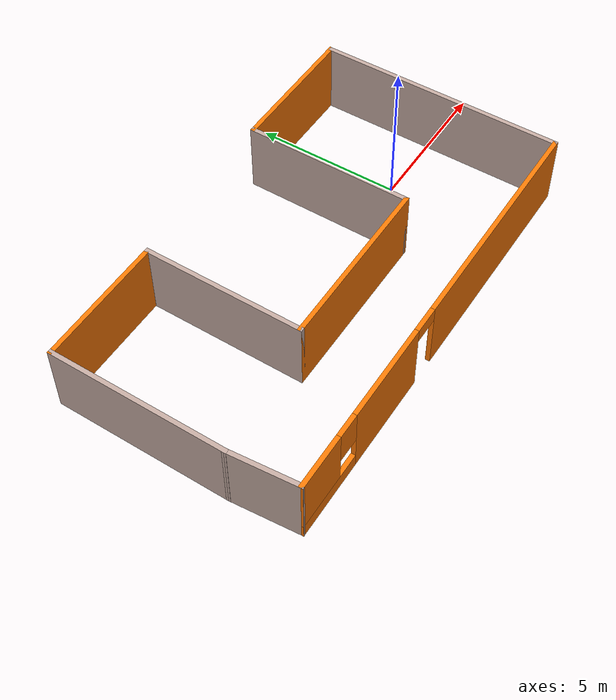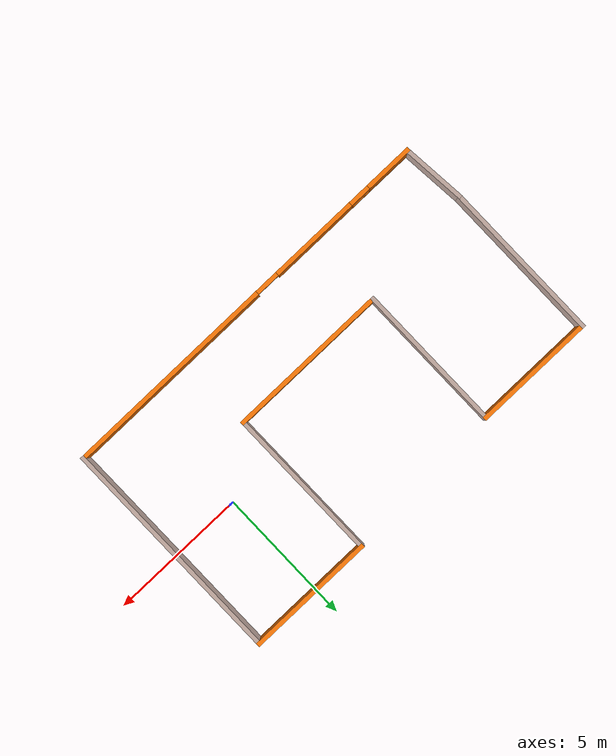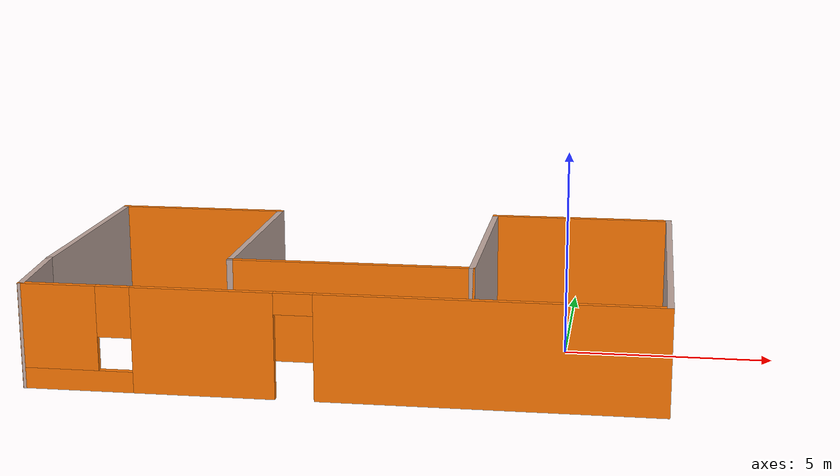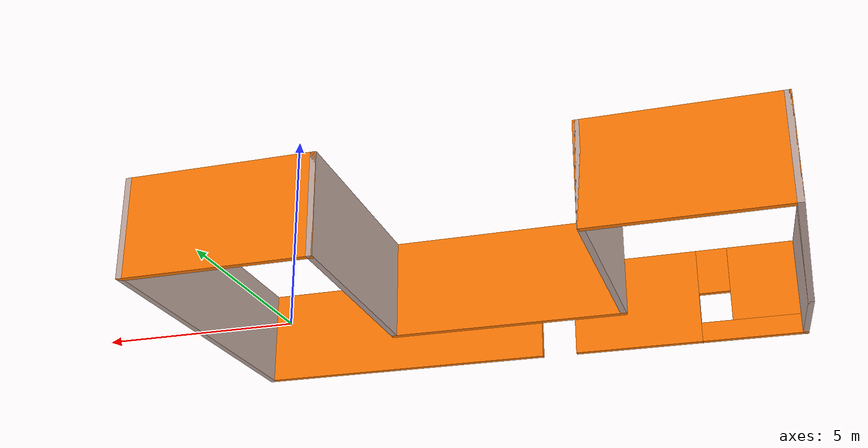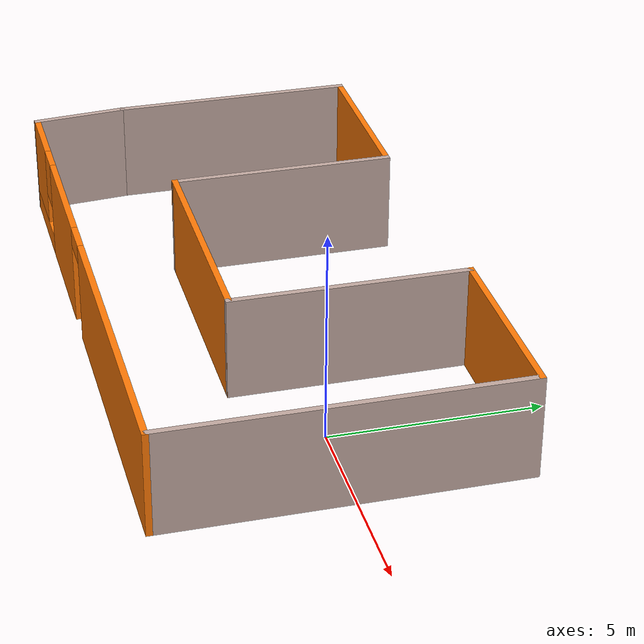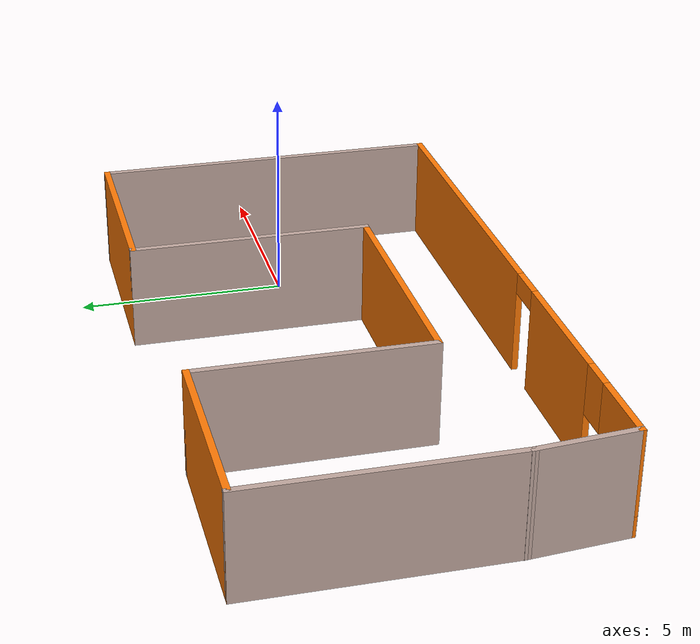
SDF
<?xml version='1.0'?>
<sdf version='1.6'>
  <model name='Walls'>
    <pose frame=''>-4.93927 -0.235539 0 0 -0 0</pose>
    <link name='Wall_10'>
      <collision name='Wall_10_Collision'>
        <geometry>
          <box>
            <size>4.75 0.15 2.5</size>
          </box>
        </geometry>
        <pose frame=''>0 0 1.25 0 -0 0</pose>
      </collision>
      <visual name='Wall_10_Visual'>
        <pose frame=''>0 0 1.25 0 -0 0</pose>
        <geometry>
          <box>
            <size>4.75 0.15 2.5</size>
          </box>
        </geometry>
        <material>
          <script>
            <uri>file://media/materials/scripts/gazebo.material</uri>
            <name>Gazebo/Grey</name>
          </script>
          <ambient>0.996078 0.47451 0.0196078 1</ambient>
        </material>
        <meta>
          <layer>0</layer>
        </meta>
      </visual>
      <pose frame=''>5.10317 4.17817 0 0 -0 0</pose>
    </link>
    <link name='Wall_11'>
      <collision name='Wall_11_Collision'>
        <geometry>
          <box>
            <size>8.5 0.15 2.5</size>
          </box>
        </geometry>
        <pose frame=''>0 0 1.25 0 -0 0</pose>
      </collision>
      <visual name='Wall_11_Visual'>
        <pose frame=''>0 0 1.25 0 -0 0</pose>
        <geometry>
          <box>
            <size>8.5 0.15 2.5</size>
          </box>
        </geometry>
        <material>
          <script>
            <uri>file://media/materials/scripts/gazebo.material</uri>
            <name>Gazebo/Grey</name>
          </script>
          <ambient>0.760784 0.662745 0.627451 1</ambient>
        </material>
        <meta>
          <layer>0</layer>
        </meta>
      </visual>
      <pose frame=''>7.40317 0.003173 0 0 0 -1.5708</pose>
    </link>
    <link name='Wall_12'>
      <pose frame=''>0.103173 -4.17183 0 0 -0 3.14159</pose>
      <visual name='Wall_12_Visual_0'>
        <pose frame=''>-3.41654 0 1.25 0 -0 0</pose>
        <geometry>
          <box>
            <size>7.91693 0.15 2.5</size>
          </box>
        </geometry>
        <material>
          <script>
            <uri>file://media/materials/scripts/gazebo.material</uri>
            <name>Gazebo/Grey</name>
          </script>
          <ambient>0.996078 0.47451 0.0196078 1</ambient>
        </material>
        <meta>
          <layer>0</layer>
        </meta>
      </visual>
      <collision name='Wall_12_Collision_0'>
        <geometry>
          <box>
            <size>7.91693 0.15 2.5</size>
          </box>
        </geometry>
        <pose frame=''>-3.41654 0 1.25 0 -0 0</pose>
      </collision>
      <visual name='Wall_12_Visual_1'>
        <pose frame=''>3.09248 0 1.25 0 -0 0</pose>
        <geometry>
          <box>
            <size>3.30109 0.15 2.5</size>
          </box>
        </geometry>
        <material>
          <script>
            <uri>file://media/materials/scripts/gazebo.material</uri>
            <name>Gazebo/Grey</name>
          </script>
          <ambient>0.996078 0.47451 0.0196078 1</ambient>
        </material>
        <meta>
          <layer>0</layer>
        </meta>
      </visual>
      <collision name='Wall_12_Collision_1'>
        <geometry>
          <box>
            <size>3.30109 0.15 2.5</size>
          </box>
        </geometry>
        <pose frame=''>3.09248 0 1.25 0 -0 0</pose>
      </collision>
      <visual name='Wall_12_Visual_2'>
        <pose frame=''>6.05901 0 0.25 0 -0 0</pose>
        <geometry>
          <box>
            <size>2.63198 0.15 0.5</size>
          </box>
        </geometry>
        <material>
          <script>
            <uri>file://media/materials/scripts/gazebo.material</uri>
            <name>Gazebo/Grey</name>
          </script>
          <ambient>0.996078 0.47451 0.0196078 1</ambient>
        </material>
        <meta>
          <layer>0</layer>
        </meta>
      </visual>
      <collision name='Wall_12_Collision_2'>
        <geometry>
          <box>
            <size>2.63198 0.15 0.5</size>
          </box>
        </geometry>
        <pose frame=''>6.05901 0 0.25 0 -0 0</pose>
      </collision>
      <visual name='Wall_12_Visual_3'>
        <pose frame=''>6.45901 0 1.5 0 -0 0</pose>
        <geometry>
          <box>
            <size>1.83198 0.15 2</size>
          </box>
        </geometry>
        <material>
          <script>
            <uri>file://media/materials/scripts/gazebo.material</uri>
            <name>Gazebo/Grey</name>
          </script>
          <ambient>0.996078 0.47451 0.0196078 1</ambient>
        </material>
        <meta>
          <layer>0</layer>
        </meta>
      </visual>
      <collision name='Wall_12_Collision_3'>
        <geometry>
          <box>
            <size>1.83198 0.15 2</size>
          </box>
        </geometry>
        <pose frame=''>6.45901 0 1.5 0 -0 0</pose>
      </collision>
      <visual name='Wall_12_Visual_4'>
        <pose frame=''>5.14302 0 1.9 0 -0 0</pose>
        <geometry>
          <box>
            <size>0.8 0.15 1.2</size>
          </box>
        </geometry>
        <material>
          <script>
            <uri>file://media/materials/scripts/gazebo.material</uri>
            <name>Gazebo/Grey</name>
          </script>
          <ambient>0.996078 0.47451 0.0196078 1</ambient>
        </material>
        <meta>
          <layer>0</layer>
        </meta>
      </visual>
      <collision name='Wall_12_Collision_4'>
        <geometry>
          <box>
            <size>0.8 0.15 1.2</size>
          </box>
        </geometry>
        <pose frame=''>5.14302 0 1.9 0 -0 0</pose>
      </collision>
      <visual name='Wall_12_Visual_5'>
        <pose frame=''>0.991929 0 2.25 0 -0 0</pose>
        <geometry>
          <box>
            <size>0.9 0.15 0.5</size>
          </box>
        </geometry>
        <material>
          <script>
            <uri>file://media/materials/scripts/gazebo.material</uri>
            <name>Gazebo/Grey</name>
          </script>
          <ambient>0.996078 0.47451 0.0196078 1</ambient>
        </material>
        <meta>
          <layer>0</layer>
        </meta>
      </visual>
      <collision name='Wall_12_Collision_5'>
        <geometry>
          <box>
            <size>0.9 0.15 0.5</size>
          </box>
        </geometry>
        <pose frame=''>0.991929 0 2.25 0 -0 0</pose>
      </collision>
    </link>
    <link name='Wall_13'>
      <collision name='Wall_13_Collision'>
        <geometry>
          <box>
            <size>2.40887 0.15 2.5</size>
          </box>
        </geometry>
        <pose frame=''>0 0 1.25 0 -0 0</pose>
      </collision>
      <visual name='Wall_13_Visual'>
        <pose frame=''>0 0 1.25 0 -0 0</pose>
        <geometry>
          <box>
            <size>2.40887 0.15 2.5</size>
          </box>
        </geometry>
        <material>
          <script>
            <uri>file://media/materials/scripts/gazebo.material</uri>
            <name>Gazebo/Grey</name>
          </script>
          <ambient>0.760784 0.662745 0.627451 1</ambient>
        </material>
        <meta>
          <layer>0</layer>
        </meta>
      </visual>
      <pose frame=''>-7.29683 -3.04683 0 0 -0 1.65945</pose>
    </link>
    <link name='Wall_5'>
      <collision name='Wall_5_Collision'>
        <geometry>
          <box>
            <size>6 0.15 2.5</size>
          </box>
        </geometry>
        <pose frame=''>0 0 1.25 0 -0 0</pose>
      </collision>
      <visual name='Wall_5_Visual'>
        <pose frame=''>0 0 1.25 0 -0 0</pose>
        <geometry>
          <box>
            <size>6 0.15 2.5</size>
          </box>
        </geometry>
        <material>
          <script>
            <uri>file://media/materials/scripts/gazebo.material</uri>
            <name>Gazebo/Grey</name>
          </script>
          <ambient>0.760784 0.662745 0.627451 1</ambient>
        </material>
        <meta>
          <layer>0</layer>
        </meta>
      </visual>
      <pose frame=''>-7.39683 1.00317 0 0 -0 1.5708</pose>
    </link>
    <link name='Wall_6'>
      <collision name='Wall_6_Collision'>
        <geometry>
          <box>
            <size>4.5 0.15 2.5</size>
          </box>
        </geometry>
        <pose frame=''>0 0 1.25 0 -0 0</pose>
      </collision>
      <visual name='Wall_6_Visual'>
        <pose frame=''>0 0 1.25 0 -0 0</pose>
        <geometry>
          <box>
            <size>4.5 0.15 2.5</size>
          </box>
        </geometry>
        <material>
          <script>
            <uri>file://media/materials/scripts/gazebo.material</uri>
            <name>Gazebo/Grey</name>
          </script>
          <ambient>0.996078 0.47451 0.0196078 1</ambient>
        </material>
        <meta>
          <layer>0</layer>
        </meta>
      </visual>
      <pose frame=''>-5.22183 3.92817 0 0 -0 0</pose>
    </link>
    <link name='Wall_7'>
      <collision name='Wall_7_Collision'>
        <geometry>
          <box>
            <size>5.5 0.15 2.5</size>
          </box>
        </geometry>
        <pose frame=''>0 0 1.25 0 -0 0</pose>
      </collision>
      <visual name='Wall_7_Visual'>
        <pose frame=''>0 0 1.25 0 -0 0</pose>
        <geometry>
          <box>
            <size>5.5 0.15 2.5</size>
          </box>
        </geometry>
        <material>
          <script>
            <uri>file://media/materials/scripts/gazebo.material</uri>
            <name>Gazebo/Grey</name>
          </script>
          <ambient>0.760784 0.662745 0.627451 1</ambient>
        </material>
        <meta>
          <layer>0</layer>
        </meta>
      </visual>
      <pose frame=''>-3.04683 1.25317 0 0 0 -1.5708</pose>
    </link>
    <link name='Wall_8'>
      <collision name='Wall_8_Collision'>
        <geometry>
          <box>
            <size>6 0.15 2.5</size>
          </box>
        </geometry>
        <pose frame=''>0 0 1.25 0 -0 0</pose>
      </collision>
      <visual name='Wall_8_Visual'>
        <pose frame=''>0 0 1.25 0 -0 0</pose>
        <geometry>
          <box>
            <size>6 0.15 2.5</size>
          </box>
        </geometry>
        <material>
          <script>
            <uri>file://media/materials/scripts/gazebo.material</uri>
            <name>Gazebo/Grey</name>
          </script>
          <ambient>0.996078 0.47451 0.0196078 1</ambient>
        </material>
        <meta>
          <layer>0</layer>
        </meta>
      </visual>
      <pose frame=''>-0.121827 -1.42183 0 0 -0 0</pose>
    </link>
    <link name='Wall_9'>
      <collision name='Wall_9_Collision'>
        <geometry>
          <box>
            <size>5.75 0.15 2.5</size>
          </box>
        </geometry>
        <pose frame=''>0 0 1.25 0 -0 0</pose>
      </collision>
      <visual name='Wall_9_Visual'>
        <pose frame=''>0 0 1.25 0 -0 0</pose>
        <geometry>
          <box>
            <size>5.75 0.15 2.5</size>
          </box>
        </geometry>
        <material>
          <script>
            <uri>file://media/materials/scripts/gazebo.material</uri>
            <name>Gazebo/Grey</name>
          </script>
          <ambient>0.760784 0.662745 0.627451 1</ambient>
        </material>
        <meta>
          <layer>0</layer>
        </meta>
      </visual>
      <pose frame=''>2.80317 1.37817 0 0 -0 1.5708</pose>
    </link>
    <static>1</static>
  </model>
</sdf>
